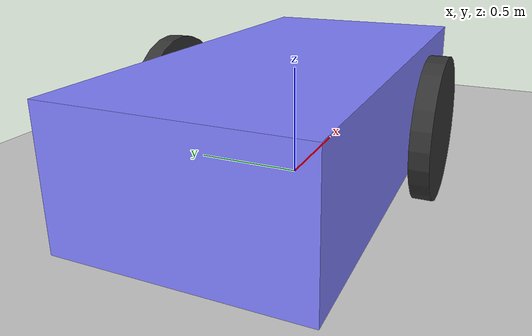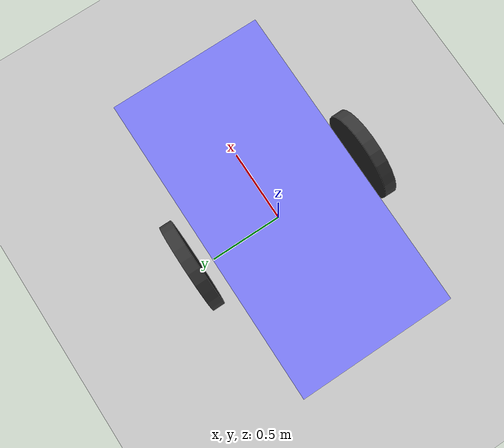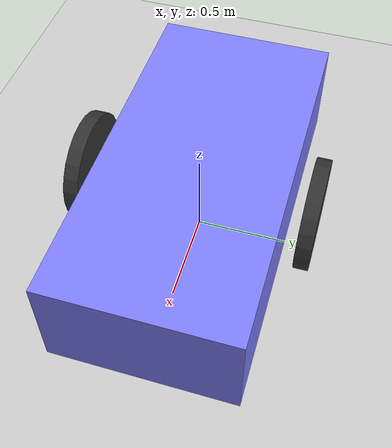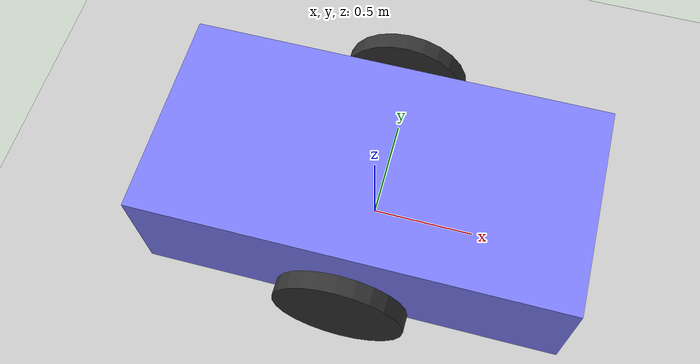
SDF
<?xml version="1.0" ?>
<sdf version="1.8">
  <world name="demo">

    <light name="sun" type="directional">
      <cast_shadows>true</cast_shadows>
      <pose>0 0 10 0 0 0</pose>
      <diffuse>0.8 0.8 0.8 1</diffuse>
      <specular>0.2 0.2 0.2 1</specular>
      <attenuation>
        <range>1000</range>
        <constant>0.9</constant>
        <linear>0.01</linear>
        <quadratic>0.001</quadratic>
      </attenuation>
      <direction>-0.5 0.1 -0.9</direction>
    </light>

    <model name="ground_plane">
      <static>true</static>
      <link name="link">
        <collision name="collision">
          <geometry>
            <plane>
              <normal>0 0 1</normal>
              <size>100 100</size>
            </plane>
          </geometry>
        </collision>
        <visual name="visual">
          <geometry>
            <plane>
              <normal>0 0 1</normal>
              <size>100 100</size>
            </plane>
          </geometry>
          <material>
            <ambient>0.8 0.8 0.8 1</ambient>
            <diffuse>0.8 0.8 0.8 1</diffuse>
            <specular>0.8 0.8 0.8 1</specular>
          </material>
        </visual>
      </link>
    </model>

    <model name="vehicle">
      <self_collide>true</self_collide>
      <pose>0 0 0 0 0 0</pose>
      <include merge="true">
        <uri>models/vehicle/model.sdf</uri>
      </include>

      <plugin
        filename="gz-sim-joint-state-publisher-system"
        name="gz::sim::systems::JointStatePublisher">
      </plugin>

      <plugin
        filename="gz-sim-pose-publisher-system"
        name="gz::sim::systems::PosePublisher">
        <publish_link_pose>true</publish_link_pose>
        <use_pose_vector_msg>true</use_pose_vector_msg>
        <static_publisher>true</static_publisher>
        <static_update_frequency>1</static_update_frequency>
      </plugin>

      <plugin
        filename="gz-sim-odometry-publisher-system"
        name="gz::sim::systems::OdometryPublisher">
        <odom_frame>vehicle/odom</odom_frame>
        <robot_base_frame>vehicle</robot_base_frame>
      </plugin>

      <plugin
	      filename="gz-sim-sensors-system"
	      name="gz::sim::systems::Sensors">
      </plugin>

      <plugin
	      filename="gz-sim-scene-broadcaster-system"
	      name="gz::sim::systems::SceneBroadcaster">
      </plugin>

    </model>
  </world>
</sdf>

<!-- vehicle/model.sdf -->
<sdf version="1.8">
    <model name='vehicle'>
      <link name='chassis'>
        <pose>0 0 0.284363 0 0 0</pose>
        <inertial>
          <mass>1.14395</mass>
          <inertia>
            <ixx>0.126164</ixx>
            <ixy>0</ixy>
            <ixz>0</ixz>
            <iyy>0.416519</iyy>
            <iyz>0</iyz>
            <izz>0.481014</izz>
          </inertia>
        </inertial>
        <visual name='visual_chassis'>
          <geometry>
            <box>
              <size>2.01142 1 0.568726</size>
            </box>
          </geometry>
          <material>
            <ambient>0.5 0.5 1.0 1</ambient>
            <diffuse>0.5 0.5 1.0 1</diffuse>
            <specular>0.0 0.0 1.0 1</specular>
          </material>
        </visual>

	<sensor name='lidar' type='gpu_lidar'>           <!--2D lidar-->
	  <always_on>1</always_on>
    <visualize>true</visualize>
    <topic>/scan</topic>
	  <pose>0 0 0.60 0 0 0</pose>
	  <update_rate>15</update_rate>
    <lidar>
      <scan>
	      <horizontal>
		      <samples>640</samples>
     		  <resolution>1</resolution>
     		  <min_angle>-3.14159</min_angle>
     		  <max_angle>3.14159</max_angle>
   		  </horizontal>

        <vertical>
        	<samples>1</samples>
     		  <resolution>1</resolution>
     		  <min_angle>0</min_angle>
     		  <max_angle>0</max_angle>
        </vertical>
      </scan>
		  <range>
		    <min>0.1</min>
		    <max>30.0</max>
		    <resolution>0.01</resolution>
		  </range>
    </lidar>
	</sensor>

        <collision name='collision_chassis'>
          <geometry>
            <box>
              <size>2.01142 1 0.568726</size>
            </box>
          </geometry>
        </collision>
      </link>

      <link name='left_wheel'>
        <pose>0 0.625 0.3 0 0 0</pose>
        <inertial>
          <mass>2</mass>
          <inertia>
            <ixx>0.145833</ixx>
            <ixy>0</ixy>
            <ixz>0</ixz>
            <iyy>0.145833</iyy>
            <iyz>0</iyz>
            <izz>0.125</izz>
          </inertia>
        </inertial>
        <visual name='visual_left_wheel'>
          <geometry>
            <cylinder>
              <radius>0.3</radius>
              <length>0.08</length>
            </cylinder>
          </geometry>
          <pose>0 0 0 1.5708 0 0</pose>
          <material>
            <ambient>0.2 0.2 0.2 1</ambient>
            <diffuse>0.2 0.2 0.2 1</diffuse>
            <specular>0.2 0.2 0.2 1</specular>
          </material>
        </visual>
        <collision name='collision_left_wheel'>
          <geometry>
            <cylinder>
              <radius>0.3</radius>
              <length>0.08</length>
            </cylinder>
          </geometry>
          <pose>0 0 0 1.5708 0 0</pose>
          <surface>
            <friction>
              <ode>
                <mu>1.0</mu>
                <mu2>1.0</mu2>
              </ode>
            </friction>
          </surface>
        </collision>
      </link>

      <link name='right_wheel'>
        <pose>0 -0.625 0.3 0 0 0</pose>
        <inertial>
          <mass>2</mass>
          <inertia>
            <ixx>0.145833</ixx>
            <ixy>0</ixy>
            <ixz>0</ixz>
            <iyy>0.145833</iyy>
            <iyz>0</iyz>
            <izz>0.125</izz>
          </inertia>
        </inertial>
        <visual name='visual_right_wheel'>
          <geometry>
            <cylinder>
              <radius>0.3</radius>
              <length>0.08</length>
            </cylinder>
          </geometry>
          <pose>0 0 0 1.5708 0 0</pose>
          <material>
            <ambient>0.2 0.2 0.2 1</ambient>
            <diffuse>0.2 0.2 0.2 1</diffuse>
            <specular>0.2 0.2 0.2 1</specular>
          </material>
        </visual>
        <collision name='collision_right_wheel'>
          <geometry>
            <cylinder>
              <radius>0.3</radius>
              <length>0.08</length>
            </cylinder>
          </geometry>
          <pose>0 0 0 1.5708 0 0</pose>
          <surface>
            <friction>
              <ode>
                <mu>1.0</mu>
                <mu2>1.0</mu2>
              </ode>
            </friction>
          </surface>
        </collision>
      </link>

      <link name='caster'>
        <pose>-0.5 0 0.2 0 0 0</pose>
        <inertial>
          <mass>1</mass>
          <inertia>
            <ixx>0.1</ixx>
            <ixy>0</ixy>
            <ixz>0</ixz>
            <iyy>0.1</iyy>
            <iyz>0</iyz>
            <izz>0.1</izz>
          </inertia>
        </inertial>
        <visual name='visual_caster'>
          <geometry>
            <sphere>
              <radius>0.2</radius>
            </sphere>
          </geometry>
          <material>
            <ambient>0.2 0.2 0.2 1</ambient>
            <diffuse>0.2 0.2 0.2 1</diffuse>
            <specular>0.2 0.2 0.2 1</specular>
          </material>
        </visual>
        <collision name='collision_caster'>
          <geometry>
            <sphere>
              <radius>0.2</radius>
            </sphere>
          </geometry>
        </collision>
      </link>

      <joint name='left_wheel_joint' type='revolute'>
        <parent>chassis</parent>
        <child>left_wheel</child>
        <axis>
          <xyz>0 1 0</xyz>
          <limit>
            <lower>-1e16</lower>
            <upper>1e16</upper>
          </limit>
          <dynamics><damping>0.05</damping></dynamics>
        </axis>
      </joint>

      <joint name='right_wheel_joint' type='revolute'>
        <parent>chassis</parent>
        <child>right_wheel</child>
        <axis>
          <xyz>0 1 0</xyz>
          <limit>
            <lower>-1e16</lower>
            <upper>1e16</upper>
          </limit>
          <dynamics><damping>0.05</damping></dynamics>
        </axis>
      </joint>

      <joint name='caster_wheel' type='ball'>
        <parent>chassis</parent>
        <child>caster</child>
      </joint>

      <!--this is for teleop-->
      <plugin
        filename="ignition-gazebo-diff-drive-system"
        name="ignition::gazebo::systems::DiffDrive">
        <left_joint>left_wheel_joint</left_joint>
        <right_joint>right_wheel_joint</right_joint>
        <wheel_separation>1.25</wheel_separation>
        <wheel_radius>0.3</wheel_radius>
        <odom_publish_frequency>10</odom_publish_frequency>
        <max_linear_acceleration>3.0</max_linear_acceleration>
        <min_linear_acceleration>-3.0</min_linear_acceleration>
        <max_angular_acceleration>4.0</max_angular_acceleration>
        <min_angular_acceleration>-4.0</min_angular_acceleration>
        <max_linear_velocity>2.0</max_linear_velocity>
        <min_linear_velocity>-2.0</min_linear_velocity>
        <max_angular_velocity>2.5</max_angular_velocity>
        <min_angular_velocity>-2.5</min_angular_velocity>
        <topic>/cmd_vel</topic>
      </plugin>

    </model>
</sdf>
